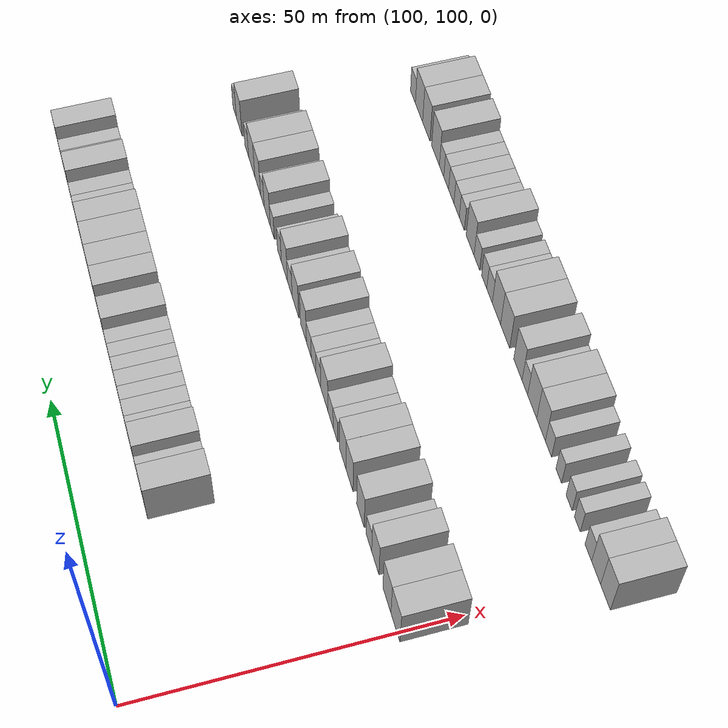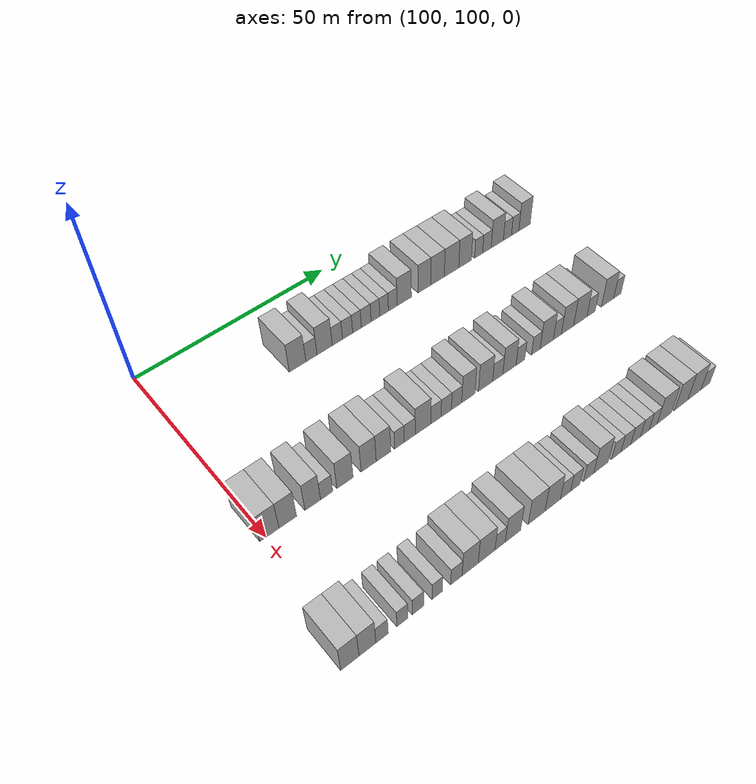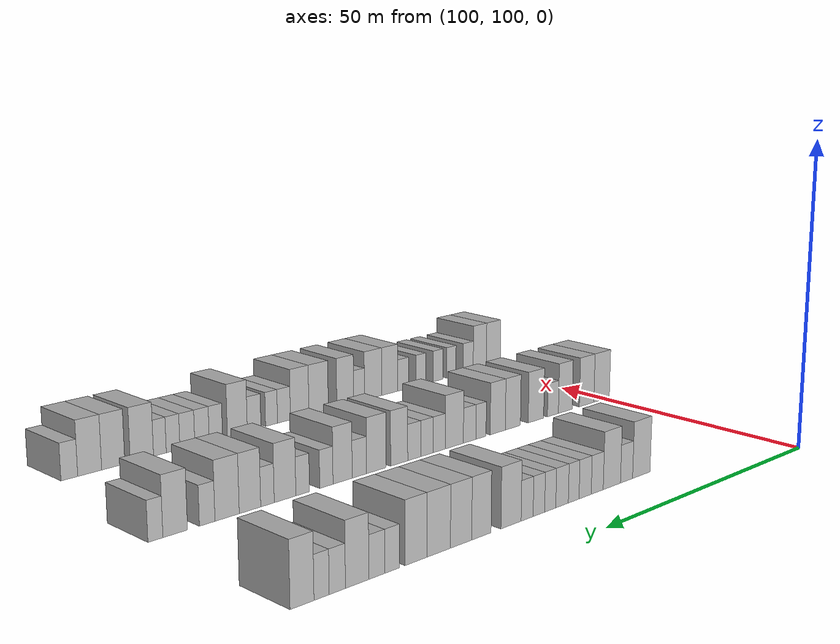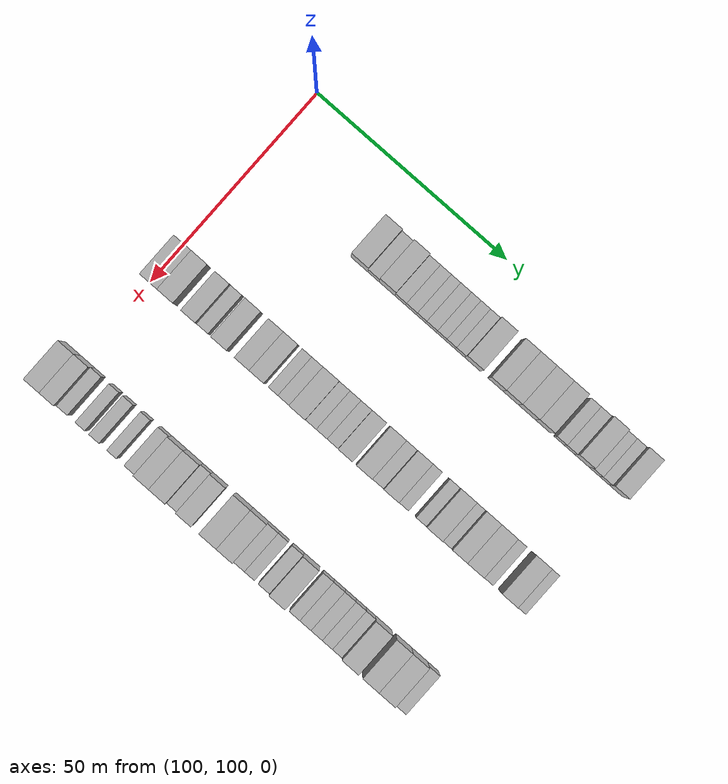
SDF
<sdf version="1.6">
 <world name="default">
  <model name="building_797">
   <static>1</static>
   <pose>115.0000 128.7473 0 0.000000 0.000000 0.000000</pose>
   <link name="link">
    <pose>0 0 4.50 0 0 0</pose>
    <collision name="collision"><geometry><box><size>10.0000 4.3881 9.0000</size></box></geometry></collision>
    <visual name="visual">
     <cast_shadows>0</cast_shadows>
     <geometry><box><size>10.0000 4.3881 9.0000</size></box></geometry>
     <material>
      <script>
       <uri>model://HANNAS_wall/materials/scripts</uri>
       <uri>model://HANNAS_wall/materials/textures</uri>
       <name>vrc/HANNAS_wall</name>
      </script>
     </material>
    </visual>
   </link>
  </model>
  <model name="building_798">
   <static>1</static>
   <pose>115.0000 132.4328 0 0.000000 0.000000 0.000000</pose>
   <link name="link">
    <pose>0 0 3.00 0 0 0</pose>
    <collision name="collision"><geometry><box><size>10.0000 2.9829 6.0000</size></box></geometry></collision>
    <visual name="visual">
     <cast_shadows>0</cast_shadows>
     <geometry><box><size>10.0000 2.9829 6.0000</size></box></geometry>
     <material>
      <script>
       <uri>model://HANNAS_wall/materials/scripts</uri>
       <uri>model://HANNAS_wall/materials/textures</uri>
       <name>vrc/HANNAS_wall</name>
      </script>
     </material>
    </visual>
   </link>
  </model>
  <model name="building_799">
   <static>1</static>
   <pose>115.0000 136.0014 0 0.000000 0.000000 0.000000</pose>
   <link name="link">
    <pose>0 0 4.50 0 0 0</pose>
    <collision name="collision"><geometry><box><size>10.0000 4.1544 9.0000</size></box></geometry></collision>
    <visual name="visual">
     <cast_shadows>0</cast_shadows>
     <geometry><box><size>10.0000 4.1544 9.0000</size></box></geometry>
     <material>
      <script>
       <uri>model://HANNAS_wall/materials/scripts</uri>
       <uri>model://HANNAS_wall/materials/textures</uri>
       <name>vrc/HANNAS_wall</name>
      </script>
     </material>
    </visual>
   </link>
  </model>
  <model name="building_800">
   <static>1</static>
   <pose>115.0000 139.4874 0 0.000000 0.000000 0.000000</pose>
   <link name="link">
    <pose>0 0 3.00 0 0 0</pose>
    <collision name="collision"><geometry><box><size>10.0000 2.8175 6.0000</size></box></geometry></collision>
    <visual name="visual">
     <cast_shadows>0</cast_shadows>
     <geometry><box><size>10.0000 2.8175 6.0000</size></box></geometry>
     <material>
      <script>
       <uri>model://HANNAS_wall/materials/scripts</uri>
       <uri>model://HANNAS_wall/materials/textures</uri>
       <name>vrc/HANNAS_wall</name>
      </script>
     </material>
    </visual>
   </link>
  </model>
  <model name="building_801">
   <static>1</static>
   <pose>115.0000 142.3061 0 0.000000 0.000000 0.000000</pose>
   <link name="link">
    <pose>0 0 3.00 0 0 0</pose>
    <collision name="collision"><geometry><box><size>10.0000 2.8199 6.0000</size></box></geometry></collision>
    <visual name="visual">
     <cast_shadows>0</cast_shadows>
     <geometry><box><size>10.0000 2.8199 6.0000</size></box></geometry>
     <material>
      <script>
       <uri>model://HANNAS_wall/materials/scripts</uri>
       <uri>model://HANNAS_wall/materials/textures</uri>
       <name>vrc/HANNAS_wall</name>
      </script>
     </material>
    </visual>
   </link>
  </model>
  <model name="building_802">
   <static>1</static>
   <pose>115.0000 144.9356 0 0.000000 0.000000 0.000000</pose>
   <link name="link">
    <pose>0 0 3.00 0 0 0</pose>
    <collision name="collision"><geometry><box><size>10.0000 2.4392 6.0000</size></box></geometry></collision>
    <visual name="visual">
     <cast_shadows>0</cast_shadows>
     <geometry><box><size>10.0000 2.4392 6.0000</size></box></geometry>
     <material>
      <script>
       <uri>model://HANNAS_wall/materials/scripts</uri>
       <uri>model://HANNAS_wall/materials/textures</uri>
       <name>vrc/HANNAS_wall</name>
      </script>
     </material>
    </visual>
   </link>
  </model>
  <model name="building_803">
   <static>1</static>
   <pose>115.0000 147.5526 0 0.000000 0.000000 0.000000</pose>
   <link name="link">
    <pose>0 0 3.00 0 0 0</pose>
    <collision name="collision"><geometry><box><size>10.0000 2.7948 6.0000</size></box></geometry></collision>
    <visual name="visual">
     <cast_shadows>0</cast_shadows>
     <geometry><box><size>10.0000 2.7948 6.0000</size></box></geometry>
     <material>
      <script>
       <uri>model://HANNAS_wall/materials/scripts</uri>
       <uri>model://HANNAS_wall/materials/textures</uri>
       <name>vrc/HANNAS_wall</name>
      </script>
     </material>
    </visual>
   </link>
  </model>
  <model name="building_804">
   <static>1</static>
   <pose>115.0000 150.1728 0 0.000000 0.000000 0.000000</pose>
   <link name="link">
    <pose>0 0 3.00 0 0 0</pose>
    <collision name="collision"><geometry><box><size>10.0000 2.4455 6.0000</size></box></geometry></collision>
    <visual name="visual">
     <cast_shadows>0</cast_shadows>
     <geometry><box><size>10.0000 2.4455 6.0000</size></box></geometry>
     <material>
      <script>
       <uri>model://HANNAS_wall/materials/scripts</uri>
       <uri>model://HANNAS_wall/materials/textures</uri>
       <name>vrc/HANNAS_wall</name>
      </script>
     </material>
    </visual>
   </link>
  </model>
  <model name="building_805">
   <static>1</static>
   <pose>115.0000 152.6391 0 0.000000 0.000000 0.000000</pose>
   <link name="link">
    <pose>0 0 3.00 0 0 0</pose>
    <collision name="collision"><geometry><box><size>10.0000 2.4870 6.0000</size></box></geometry></collision>
    <visual name="visual">
     <cast_shadows>0</cast_shadows>
     <geometry><box><size>10.0000 2.4870 6.0000</size></box></geometry>
     <material>
      <script>
       <uri>model://HANNAS_wall/materials/scripts</uri>
       <uri>model://HANNAS_wall/materials/textures</uri>
       <name>vrc/HANNAS_wall</name>
      </script>
     </material>
    </visual>
   </link>
  </model>
  <model name="building_806">
   <static>1</static>
   <pose>115.0000 155.1587 0 0.000000 0.000000 0.000000</pose>
   <link name="link">
    <pose>0 0 3.00 0 0 0</pose>
    <collision name="collision"><geometry><box><size>10.0000 2.5521 6.0000</size></box></geometry></collision>
    <visual name="visual">
     <cast_shadows>0</cast_shadows>
     <geometry><box><size>10.0000 2.5521 6.0000</size></box></geometry>
     <material>
      <script>
       <uri>model://HANNAS_wall/materials/scripts</uri>
       <uri>model://HANNAS_wall/materials/textures</uri>
       <name>vrc/HANNAS_wall</name>
      </script>
     </material>
    </visual>
   </link>
  </model>
  <model name="building_807">
   <static>1</static>
   <pose>115.0000 158.5305 0 0.000000 0.000000 0.000000</pose>
   <link name="link">
    <pose>0 0 4.50 0 0 0</pose>
    <collision name="collision"><geometry><box><size>10.0000 4.1913 9.0000</size></box></geometry></collision>
    <visual name="visual">
     <cast_shadows>0</cast_shadows>
     <geometry><box><size>10.0000 4.1913 9.0000</size></box></geometry>
     <material>
      <script>
       <uri>model://HANNAS_wall/materials/scripts</uri>
       <uri>model://HANNAS_wall/materials/textures</uri>
       <name>vrc/HANNAS_wall</name>
      </script>
     </material>
    </visual>
   </link>
  </model>
  <model name="building_808">
   <static>1</static>
   <pose>115.0000 164.5458 0 0.000000 0.000000 0.000000</pose>
   <link name="link">
    <pose>0 0 4.50 0 0 0</pose>
    <collision name="collision"><geometry><box><size>10.0000 3.8393 9.0000</size></box></geometry></collision>
    <visual name="visual">
     <cast_shadows>0</cast_shadows>
     <geometry><box><size>10.0000 3.8393 9.0000</size></box></geometry>
     <material>
      <script>
       <uri>model://HANNAS_wall/materials/scripts</uri>
       <uri>model://HANNAS_wall/materials/textures</uri>
       <name>vrc/HANNAS_wall</name>
      </script>
     </material>
    </visual>
   </link>
  </model>
  <model name="building_809">
   <static>1</static>
   <pose>115.0000 168.5230 0 0.000000 0.000000 0.000000</pose>
   <link name="link">
    <pose>0 0 4.50 0 0 0</pose>
    <collision name="collision"><geometry><box><size>10.0000 4.1152 9.0000</size></box></geometry></collision>
    <visual name="visual">
     <cast_shadows>0</cast_shadows>
     <geometry><box><size>10.0000 4.1152 9.0000</size></box></geometry>
     <material>
      <script>
       <uri>model://HANNAS_wall/materials/scripts</uri>
       <uri>model://HANNAS_wall/materials/textures</uri>
       <name>vrc/HANNAS_wall</name>
      </script>
     </material>
    </visual>
   </link>
  </model>
  <model name="building_810">
   <static>1</static>
   <pose>115.0000 172.8074 0 0.000000 0.000000 0.000000</pose>
   <link name="link">
    <pose>0 0 4.50 0 0 0</pose>
    <collision name="collision"><geometry><box><size>10.0000 4.4536 9.0000</size></box></geometry></collision>
    <visual name="visual">
     <cast_shadows>0</cast_shadows>
     <geometry><box><size>10.0000 4.4536 9.0000</size></box></geometry>
     <material>
      <script>
       <uri>model://HANNAS_wall/materials/scripts</uri>
       <uri>model://HANNAS_wall/materials/textures</uri>
       <name>vrc/HANNAS_wall</name>
      </script>
     </material>
    </visual>
   </link>
  </model>
  <model name="building_811">
   <static>1</static>
   <pose>115.0000 177.0146 0 0.000000 0.000000 0.000000</pose>
   <link name="link">
    <pose>0 0 4.50 0 0 0</pose>
    <collision name="collision"><geometry><box><size>10.0000 3.9610 9.0000</size></box></geometry></collision>
    <visual name="visual">
     <cast_shadows>0</cast_shadows>
     <geometry><box><size>10.0000 3.9610 9.0000</size></box></geometry>
     <material>
      <script>
       <uri>model://HANNAS_wall/materials/scripts</uri>
       <uri>model://HANNAS_wall/materials/textures</uri>
       <name>vrc/HANNAS_wall</name>
      </script>
     </material>
    </visual>
   </link>
  </model>
  <model name="building_812">
   <static>1</static>
   <pose>115.0000 181.2908 0 0.000000 0.000000 0.000000</pose>
   <link name="link">
    <pose>0 0 3.00 0 0 0</pose>
    <collision name="collision"><geometry><box><size>10.0000 2.5914 6.0000</size></box></geometry></collision>
    <visual name="visual">
     <cast_shadows>0</cast_shadows>
     <geometry><box><size>10.0000 2.5914 6.0000</size></box></geometry>
     <material>
      <script>
       <uri>model://HANNAS_wall/materials/scripts</uri>
       <uri>model://HANNAS_wall/materials/textures</uri>
       <name>vrc/HANNAS_wall</name>
      </script>
     </material>
    </visual>
   </link>
  </model>
  <model name="building_813">
   <static>1</static>
   <pose>115.0000 183.9563 0 0.000000 0.000000 0.000000</pose>
   <link name="link">
    <pose>0 0 3.00 0 0 0</pose>
    <collision name="collision"><geometry><box><size>10.0000 2.7395 6.0000</size></box></geometry></collision>
    <visual name="visual">
     <cast_shadows>0</cast_shadows>
     <geometry><box><size>10.0000 2.7395 6.0000</size></box></geometry>
     <material>
      <script>
       <uri>model://HANNAS_wall/materials/scripts</uri>
       <uri>model://HANNAS_wall/materials/textures</uri>
       <name>vrc/HANNAS_wall</name>
      </script>
     </material>
    </visual>
   </link>
  </model>
  <model name="building_814">
   <static>1</static>
   <pose>115.0000 187.3021 0 0.000000 0.000000 0.000000</pose>
   <link name="link">
    <pose>0 0 4.50 0 0 0</pose>
    <collision name="collision"><geometry><box><size>10.0000 3.9519 9.0000</size></box></geometry></collision>
    <visual name="visual">
     <cast_shadows>0</cast_shadows>
     <geometry><box><size>10.0000 3.9519 9.0000</size></box></geometry>
     <material>
      <script>
       <uri>model://HANNAS_wall/materials/scripts</uri>
       <uri>model://HANNAS_wall/materials/textures</uri>
       <name>vrc/HANNAS_wall</name>
      </script>
     </material>
    </visual>
   </link>
  </model>
  <model name="building_815">
   <static>1</static>
   <pose>115.0000 190.6146 0 0.000000 0.000000 0.000000</pose>
   <link name="link">
    <pose>0 0 3.00 0 0 0</pose>
    <collision name="collision"><geometry><box><size>10.0000 2.6731 6.0000</size></box></geometry></collision>
    <visual name="visual">
     <cast_shadows>0</cast_shadows>
     <geometry><box><size>10.0000 2.6731 6.0000</size></box></geometry>
     <material>
      <script>
       <uri>model://HANNAS_wall/materials/scripts</uri>
       <uri>model://HANNAS_wall/materials/textures</uri>
       <name>vrc/HANNAS_wall</name>
      </script>
     </material>
    </visual>
   </link>
  </model>
  <model name="building_816">
   <static>1</static>
   <pose>115.0000 193.1752 0 0.000000 0.000000 0.000000</pose>
   <link name="link">
    <pose>0 0 3.00 0 0 0</pose>
    <collision name="collision"><geometry><box><size>10.0000 2.4482 6.0000</size></box></geometry></collision>
    <visual name="visual">
     <cast_shadows>0</cast_shadows>
     <geometry><box><size>10.0000 2.4482 6.0000</size></box></geometry>
     <material>
      <script>
       <uri>model://HANNAS_wall/materials/scripts</uri>
       <uri>model://HANNAS_wall/materials/textures</uri>
       <name>vrc/HANNAS_wall</name>
      </script>
     </material>
    </visual>
   </link>
  </model>
  <model name="building_817">
   <static>1</static>
   <pose>115.0000 196.2857 0 0.000000 0.000000 0.000000</pose>
   <link name="link">
    <pose>0 0 4.50 0 0 0</pose>
    <collision name="collision"><geometry><box><size>10.0000 3.7728 9.0000</size></box></geometry></collision>
    <visual name="visual">
     <cast_shadows>0</cast_shadows>
     <geometry><box><size>10.0000 3.7728 9.0000</size></box></geometry>
     <material>
      <script>
       <uri>model://HANNAS_wall/materials/scripts</uri>
       <uri>model://HANNAS_wall/materials/textures</uri>
       <name>vrc/HANNAS_wall</name>
      </script>
     </material>
    </visual>
   </link>
  </model>
  <model name="building_1014">
   <static>1</static>
   <pose>145.0000 100.8133 0 0.000000 0.000000 0.000000</pose>
   <link name="link">
    <pose>0 0 4.50 0 0 0</pose>
    <collision name="collision"><geometry><box><size>10.0000 4.4678 9.0000</size></box></geometry></collision>
    <visual name="visual">
     <cast_shadows>0</cast_shadows>
     <geometry><box><size>10.0000 4.4678 9.0000</size></box></geometry>
     <material>
      <script>
       <uri>model://HANNAS_wall/materials/scripts</uri>
       <uri>model://HANNAS_wall/materials/textures</uri>
       <name>vrc/HANNAS_wall</name>
      </script>
     </material>
    </visual>
   </link>
  </model>
  <model name="building_1015">
   <static>1</static>
   <pose>145.0000 105.0974 0 0.000000 0.000000 0.000000</pose>
   <link name="link">
    <pose>0 0 4.50 0 0 0</pose>
    <collision name="collision"><geometry><box><size>10.0000 4.1003 9.0000</size></box></geometry></collision>
    <visual name="visual">
     <cast_shadows>0</cast_shadows>
     <geometry><box><size>10.0000 4.1003 9.0000</size></box></geometry>
     <material>
      <script>
       <uri>model://HANNAS_wall/materials/scripts</uri>
       <uri>model://HANNAS_wall/materials/textures</uri>
       <name>vrc/HANNAS_wall</name>
      </script>
     </material>
    </visual>
   </link>
  </model>
  <model name="building_1016">
   <static>1</static>
   <pose>145.0000 111.0250 0 0.000000 0.000000 0.000000</pose>
   <link name="link">
    <pose>0 0 4.50 0 0 0</pose>
    <collision name="collision"><geometry><box><size>10.0000 3.7549 9.0000</size></box></geometry></collision>
    <visual name="visual">
     <cast_shadows>0</cast_shadows>
     <geometry><box><size>10.0000 3.7549 9.0000</size></box></geometry>
     <material>
      <script>
       <uri>model://HANNAS_wall/materials/scripts</uri>
       <uri>model://HANNAS_wall/materials/textures</uri>
       <name>vrc/HANNAS_wall</name>
      </script>
     </material>
    </visual>
   </link>
  </model>
  <model name="building_1017">
   <static>1</static>
   <pose>145.0000 114.3806 0 0.000000 0.000000 0.000000</pose>
   <link name="link">
    <pose>0 0 3.00 0 0 0</pose>
    <collision name="collision"><geometry><box><size>10.0000 2.9562 6.0000</size></box></geometry></collision>
    <visual name="visual">
     <cast_shadows>0</cast_shadows>
     <geometry><box><size>10.0000 2.9562 6.0000</size></box></geometry>
     <material>
      <script>
       <uri>model://HANNAS_wall/materials/scripts</uri>
       <uri>model://HANNAS_wall/materials/textures</uri>
       <name>vrc/HANNAS_wall</name>
      </script>
     </material>
    </visual>
   </link>
  </model>
  <model name="building_1018">
   <static>1</static>
   <pose>145.0000 118.8811 0 0.000000 0.000000 0.000000</pose>
   <link name="link">
    <pose>0 0 4.50 0 0 0</pose>
    <collision name="collision"><geometry><box><size>10.0000 4.0448 9.0000</size></box></geometry></collision>
    <visual name="visual">
     <cast_shadows>0</cast_shadows>
     <geometry><box><size>10.0000 4.0448 9.0000</size></box></geometry>
     <material>
      <script>
       <uri>model://HANNAS_wall/materials/scripts</uri>
       <uri>model://HANNAS_wall/materials/textures</uri>
       <name>vrc/HANNAS_wall</name>
      </script>
     </material>
    </visual>
   </link>
  </model>
  <model name="building_1019">
   <static>1</static>
   <pose>145.0000 124.8182 0 0.000000 0.000000 0.000000</pose>
   <link name="link">
    <pose>0 0 4.50 0 0 0</pose>
    <collision name="collision"><geometry><box><size>10.0000 3.8295 9.0000</size></box></geometry></collision>
    <visual name="visual">
     <cast_shadows>0</cast_shadows>
     <geometry><box><size>10.0000 3.8295 9.0000</size></box></geometry>
     <material>
      <script>
       <uri>model://HANNAS_wall/materials/scripts</uri>
       <uri>model://HANNAS_wall/materials/textures</uri>
       <name>vrc/HANNAS_wall</name>
      </script>
     </material>
    </visual>
   </link>
  </model>
  <model name="building_1020">
   <static>1</static>
   <pose>145.0000 128.6165 0 0.000000 0.000000 0.000000</pose>
   <link name="link">
    <pose>0 0 4.50 0 0 0</pose>
    <collision name="collision"><geometry><box><size>10.0000 3.7670 9.0000</size></box></geometry></collision>
    <visual name="visual">
     <cast_shadows>0</cast_shadows>
     <geometry><box><size>10.0000 3.7670 9.0000</size></box></geometry>
     <material>
      <script>
       <uri>model://HANNAS_wall/materials/scripts</uri>
       <uri>model://HANNAS_wall/materials/textures</uri>
       <name>vrc/HANNAS_wall</name>
      </script>
     </material>
    </visual>
   </link>
  </model>
  <model name="building_1021">
   <static>1</static>
   <pose>145.0000 132.7388 0 0.000000 0.000000 0.000000</pose>
   <link name="link">
    <pose>0 0 3.00 0 0 0</pose>
    <collision name="collision"><geometry><box><size>10.0000 2.4777 6.0000</size></box></geometry></collision>
    <visual name="visual">
     <cast_shadows>0</cast_shadows>
     <geometry><box><size>10.0000 2.4777 6.0000</size></box></geometry>
     <material>
      <script>
       <uri>model://HANNAS_wall/materials/scripts</uri>
       <uri>model://HANNAS_wall/materials/textures</uri>
       <name>vrc/HANNAS_wall</name>
      </script>
     </material>
    </visual>
   </link>
  </model>
  <model name="building_1022">
   <static>1</static>
   <pose>145.0000 135.4642 0 0.000000 0.000000 0.000000</pose>
   <link name="link">
    <pose>0 0 3.00 0 0 0</pose>
    <collision name="collision"><geometry><box><size>10.0000 2.9730 6.0000</size></box></geometry></collision>
    <visual name="visual">
     <cast_shadows>0</cast_shadows>
     <geometry><box><size>10.0000 2.9730 6.0000</size></box></geometry>
     <material>
      <script>
       <uri>model://HANNAS_wall/materials/scripts</uri>
       <uri>model://HANNAS_wall/materials/textures</uri>
       <name>vrc/HANNAS_wall</name>
      </script>
     </material>
    </visual>
   </link>
  </model>
  <model name="building_1023">
   <static>1</static>
   <pose>145.0000 139.0472 0 0.000000 0.000000 0.000000</pose>
   <link name="link">
    <pose>0 0 4.50 0 0 0</pose>
    <collision name="collision"><geometry><box><size>10.0000 4.1930 9.0000</size></box></geometry></collision>
    <visual name="visual">
     <cast_shadows>0</cast_shadows>
     <geometry><box><size>10.0000 4.1930 9.0000</size></box></geometry>
     <material>
      <script>
       <uri>model://HANNAS_wall/materials/scripts</uri>
       <uri>model://HANNAS_wall/materials/textures</uri>
       <name>vrc/HANNAS_wall</name>
      </script>
     </material>
    </visual>
   </link>
  </model>
  <model name="building_1024">
   <static>1</static>
   <pose>145.0000 142.5374 0 0.000000 0.000000 0.000000</pose>
   <link name="link">
    <pose>0 0 3.00 0 0 0</pose>
    <collision name="collision"><geometry><box><size>10.0000 2.7876 6.0000</size></box></geometry></collision>
    <visual name="visual">
     <cast_shadows>0</cast_shadows>
     <geometry><box><size>10.0000 2.7876 6.0000</size></box></geometry>
     <material>
      <script>
       <uri>model://HANNAS_wall/materials/scripts</uri>
       <uri>model://HANNAS_wall/materials/textures</uri>
       <name>vrc/HANNAS_wall</name>
      </script>
     </material>
    </visual>
   </link>
  </model>
  <model name="building_1025">
   <static>1</static>
   <pose>145.0000 145.3483 0 0.000000 0.000000 0.000000</pose>
   <link name="link">
    <pose>0 0 3.00 0 0 0</pose>
    <collision name="collision"><geometry><box><size>10.0000 2.8342 6.0000</size></box></geometry></collision>
    <visual name="visual">
     <cast_shadows>0</cast_shadows>
     <geometry><box><size>10.0000 2.8342 6.0000</size></box></geometry>
     <material>
      <script>
       <uri>model://HANNAS_wall/materials/scripts</uri>
       <uri>model://HANNAS_wall/materials/textures</uri>
       <name>vrc/HANNAS_wall</name>
      </script>
     </material>
    </visual>
   </link>
  </model>
  <model name="building_1026">
   <static>1</static>
   <pose>145.0000 148.1973 0 0.000000 0.000000 0.000000</pose>
   <link name="link">
    <pose>0 0 3.00 0 0 0</pose>
    <collision name="collision"><geometry><box><size>10.0000 2.8637 6.0000</size></box></geometry></collision>
    <visual name="visual">
     <cast_shadows>0</cast_shadows>
     <geometry><box><size>10.0000 2.8637 6.0000</size></box></geometry>
     <material>
      <script>
       <uri>model://HANNAS_wall/materials/scripts</uri>
       <uri>model://HANNAS_wall/materials/textures</uri>
       <name>vrc/HANNAS_wall</name>
      </script>
     </material>
    </visual>
   </link>
  </model>
  <model name="building_1027">
   <static>1</static>
   <pose>145.0000 151.4830 0 0.000000 0.000000 0.000000</pose>
   <link name="link">
    <pose>0 0 4.50 0 0 0</pose>
    <collision name="collision"><geometry><box><size>10.0000 3.7078 9.0000</size></box></geometry></collision>
    <visual name="visual">
     <cast_shadows>0</cast_shadows>
     <geometry><box><size>10.0000 3.7078 9.0000</size></box></geometry>
     <material>
      <script>
       <uri>model://HANNAS_wall/materials/scripts</uri>
       <uri>model://HANNAS_wall/materials/textures</uri>
       <name>vrc/HANNAS_wall</name>
      </script>
     </material>
    </visual>
   </link>
  </model>
  <model name="building_1028">
   <static>1</static>
   <pose>145.0000 156.3765 0 0.000000 0.000000 0.000000</pose>
   <link name="link">
    <pose>0 0 4.50 0 0 0</pose>
    <collision name="collision"><geometry><box><size>10.0000 4.0793 9.0000</size></box></geometry></collision>
    <visual name="visual">
     <cast_shadows>0</cast_shadows>
     <geometry><box><size>10.0000 4.0793 9.0000</size></box></geometry>
     <material>
      <script>
       <uri>model://HANNAS_wall/materials/scripts</uri>
       <uri>model://HANNAS_wall/materials/textures</uri>
       <name>vrc/HANNAS_wall</name>
      </script>
     </material>
    </visual>
   </link>
  </model>
  <model name="building_1029">
   <static>1</static>
   <pose>145.0000 159.8992 0 0.000000 0.000000 0.000000</pose>
   <link name="link">
    <pose>0 0 3.00 0 0 0</pose>
    <collision name="collision"><geometry><box><size>10.0000 2.9660 6.0000</size></box></geometry></collision>
    <visual name="visual">
     <cast_shadows>0</cast_shadows>
     <geometry><box><size>10.0000 2.9660 6.0000</size></box></geometry>
     <material>
      <script>
       <uri>model://HANNAS_wall/materials/scripts</uri>
       <uri>model://HANNAS_wall/materials/textures</uri>
       <name>vrc/HANNAS_wall</name>
      </script>
     </material>
    </visual>
   </link>
  </model>
  <model name="building_1030">
   <static>1</static>
   <pose>145.0000 163.3170 0 0.000000 0.000000 0.000000</pose>
   <link name="link">
    <pose>0 0 4.50 0 0 0</pose>
    <collision name="collision"><geometry><box><size>10.0000 3.8696 9.0000</size></box></geometry></collision>
    <visual name="visual">
     <cast_shadows>0</cast_shadows>
     <geometry><box><size>10.0000 3.8696 9.0000</size></box></geometry>
     <material>
      <script>
       <uri>model://HANNAS_wall/materials/scripts</uri>
       <uri>model://HANNAS_wall/materials/textures</uri>
       <name>vrc/HANNAS_wall</name>
      </script>
     </material>
    </visual>
   </link>
  </model>
  <model name="building_1031">
   <static>1</static>
   <pose>145.0000 166.5636 0 0.000000 0.000000 0.000000</pose>
   <link name="link">
    <pose>0 0 3.00 0 0 0</pose>
    <collision name="collision"><geometry><box><size>10.0000 2.6235 6.0000</size></box></geometry></collision>
    <visual name="visual">
     <cast_shadows>0</cast_shadows>
     <geometry><box><size>10.0000 2.6235 6.0000</size></box></geometry>
     <material>
      <script>
       <uri>model://HANNAS_wall/materials/scripts</uri>
       <uri>model://HANNAS_wall/materials/textures</uri>
       <name>vrc/HANNAS_wall</name>
      </script>
     </material>
    </visual>
   </link>
  </model>
  <model name="building_1032">
   <static>1</static>
   <pose>145.0000 171.1815 0 0.000000 0.000000 0.000000</pose>
   <link name="link">
    <pose>0 0 3.00 0 0 0</pose>
    <collision name="collision"><geometry><box><size>10.0000 2.6123 6.0000</size></box></geometry></collision>
    <visual name="visual">
     <cast_shadows>0</cast_shadows>
     <geometry><box><size>10.0000 2.6123 6.0000</size></box></geometry>
     <material>
      <script>
       <uri>model://HANNAS_wall/materials/scripts</uri>
       <uri>model://HANNAS_wall/materials/textures</uri>
       <name>vrc/HANNAS_wall</name>
      </script>
     </material>
    </visual>
   </link>
  </model>
  <model name="building_1033">
   <static>1</static>
   <pose>145.0000 174.5165 0 0.000000 0.000000 0.000000</pose>
   <link name="link">
    <pose>0 0 4.50 0 0 0</pose>
    <collision name="collision"><geometry><box><size>10.0000 4.0577 9.0000</size></box></geometry></collision>
    <visual name="visual">
     <cast_shadows>0</cast_shadows>
     <geometry><box><size>10.0000 4.0577 9.0000</size></box></geometry>
     <material>
      <script>
       <uri>model://HANNAS_wall/materials/scripts</uri>
       <uri>model://HANNAS_wall/materials/textures</uri>
       <name>vrc/HANNAS_wall</name>
      </script>
     </material>
    </visual>
   </link>
  </model>
  <model name="building_1034">
   <static>1</static>
   <pose>145.0000 177.7896 0 0.000000 0.000000 0.000000</pose>
   <link name="link">
    <pose>0 0 3.00 0 0 0</pose>
    <collision name="collision"><geometry><box><size>10.0000 2.4884 6.0000</size></box></geometry></collision>
    <visual name="visual">
     <cast_shadows>0</cast_shadows>
     <geometry><box><size>10.0000 2.4884 6.0000</size></box></geometry>
     <material>
      <script>
       <uri>model://HANNAS_wall/materials/scripts</uri>
       <uri>model://HANNAS_wall/materials/textures</uri>
       <name>vrc/HANNAS_wall</name>
      </script>
     </material>
    </visual>
   </link>
  </model>
  <model name="building_1035">
   <static>1</static>
   <pose>145.0000 180.9646 0 0.000000 0.000000 0.000000</pose>
   <link name="link">
    <pose>0 0 4.50 0 0 0</pose>
    <collision name="collision"><geometry><box><size>10.0000 3.8615 9.0000</size></box></geometry></collision>
    <visual name="visual">
     <cast_shadows>0</cast_shadows>
     <geometry><box><size>10.0000 3.8615 9.0000</size></box></geometry>
     <material>
      <script>
       <uri>model://HANNAS_wall/materials/scripts</uri>
       <uri>model://HANNAS_wall/materials/textures</uri>
       <name>vrc/HANNAS_wall</name>
      </script>
     </material>
    </visual>
   </link>
  </model>
  <model name="building_1036">
   <static>1</static>
   <pose>145.0000 185.0206 0 0.000000 0.000000 0.000000</pose>
   <link name="link">
    <pose>0 0 4.50 0 0 0</pose>
    <collision name="collision"><geometry><box><size>10.0000 4.2505 9.0000</size></box></geometry></collision>
    <visual name="visual">
     <cast_shadows>0</cast_shadows>
     <geometry><box><size>10.0000 4.2505 9.0000</size></box></geometry>
     <material>
      <script>
       <uri>model://HANNAS_wall/materials/scripts</uri>
       <uri>model://HANNAS_wall/materials/textures</uri>
       <name>vrc/HANNAS_wall</name>
      </script>
     </material>
    </visual>
   </link>
  </model>
  <model name="building_1037">
   <static>1</static>
   <pose>145.0000 188.4783 0 0.000000 0.000000 0.000000</pose>
   <link name="link">
    <pose>0 0 3.00 0 0 0</pose>
    <collision name="collision"><geometry><box><size>10.0000 2.6651 6.0000</size></box></geometry></collision>
    <visual name="visual">
     <cast_shadows>0</cast_shadows>
     <geometry><box><size>10.0000 2.6651 6.0000</size></box></geometry>
     <material>
      <script>
       <uri>model://HANNAS_wall/materials/scripts</uri>
       <uri>model://HANNAS_wall/materials/textures</uri>
       <name>vrc/HANNAS_wall</name>
      </script>
     </material>
    </visual>
   </link>
  </model>
  <model name="building_1038">
   <static>1</static>
   <pose>145.0000 193.8384 0 0.000000 0.000000 0.000000</pose>
   <link name="link">
    <pose>0 0 4.50 0 0 0</pose>
    <collision name="collision"><geometry><box><size>10.0000 4.0552 9.0000</size></box></geometry></collision>
    <visual name="visual">
     <cast_shadows>0</cast_shadows>
     <geometry><box><size>10.0000 4.0552 9.0000</size></box></geometry>
     <material>
      <script>
       <uri>model://HANNAS_wall/materials/scripts</uri>
       <uri>model://HANNAS_wall/materials/textures</uri>
       <name>vrc/HANNAS_wall</name>
      </script>
     </material>
    </visual>
   </link>
  </model>
  <model name="building_1039">
   <static>1</static>
   <pose>145.0000 197.0781 0 0.000000 0.000000 0.000000</pose>
   <link name="link">
    <pose>0 0 3.00 0 0 0</pose>
    <collision name="collision"><geometry><box><size>10.0000 2.4242 6.0000</size></box></geometry></collision>
    <visual name="visual">
     <cast_shadows>0</cast_shadows>
     <geometry><box><size>10.0000 2.4242 6.0000</size></box></geometry>
     <material>
      <script>
       <uri>model://HANNAS_wall/materials/scripts</uri>
       <uri>model://HANNAS_wall/materials/textures</uri>
       <name>vrc/HANNAS_wall</name>
      </script>
     </material>
    </visual>
   </link>
  </model>
  <model name="building_1240">
   <static>1</static>
   <pose>175.0000 97.2610 0 0.000000 0.000000 0.000000</pose>
   <link name="link">
    <pose>0 0 4.50 0 0 0</pose>
    <collision name="collision"><geometry><box><size>10.0000 4.0344 9.0000</size></box></geometry></collision>
    <visual name="visual">
     <cast_shadows>0</cast_shadows>
     <geometry><box><size>10.0000 4.0344 9.0000</size></box></geometry>
     <material>
      <script>
       <uri>model://HANNAS_wall/materials/scripts</uri>
       <uri>model://HANNAS_wall/materials/textures</uri>
       <name>vrc/HANNAS_wall</name>
      </script>
     </material>
    </visual>
   </link>
  </model>
  <model name="building_1241">
   <static>1</static>
   <pose>175.0000 101.1628 0 0.000000 0.000000 0.000000</pose>
   <link name="link">
    <pose>0 0 4.50 0 0 0</pose>
    <collision name="collision"><geometry><box><size>10.0000 3.7691 9.0000</size></box></geometry></collision>
    <visual name="visual">
     <cast_shadows>0</cast_shadows>
     <geometry><box><size>10.0000 3.7691 9.0000</size></box></geometry>
     <material>
      <script>
       <uri>model://HANNAS_wall/materials/scripts</uri>
       <uri>model://HANNAS_wall/materials/textures</uri>
       <name>vrc/HANNAS_wall</name>
      </script>
     </material>
    </visual>
   </link>
  </model>
  <model name="building_1242">
   <static>1</static>
   <pose>175.0000 104.4459 0 0.000000 0.000000 0.000000</pose>
   <link name="link">
    <pose>0 0 3.00 0 0 0</pose>
    <collision name="collision"><geometry><box><size>10.0000 2.7970 6.0000</size></box></geometry></collision>
    <visual name="visual">
     <cast_shadows>0</cast_shadows>
     <geometry><box><size>10.0000 2.7970 6.0000</size></box></geometry>
     <material>
      <script>
       <uri>model://HANNAS_wall/materials/scripts</uri>
       <uri>model://HANNAS_wall/materials/textures</uri>
       <name>vrc/HANNAS_wall</name>
      </script>
     </material>
    </visual>
   </link>
  </model>
  <model name="building_1243">
   <static>1</static>
   <pose>175.0000 109.1198 0 0.000000 0.000000 0.000000</pose>
   <link name="link">
    <pose>0 0 3.00 0 0 0</pose>
    <collision name="collision"><geometry><box><size>10.0000 2.5507 6.0000</size></box></geometry></collision>
    <visual name="visual">
     <cast_shadows>0</cast_shadows>
     <geometry><box><size>10.0000 2.5507 6.0000</size></box></geometry>
     <material>
      <script>
       <uri>model://HANNAS_wall/materials/scripts</uri>
       <uri>model://HANNAS_wall/materials/textures</uri>
       <name>vrc/HANNAS_wall</name>
      </script>
     </material>
    </visual>
   </link>
  </model>
  <model name="building_1244">
   <static>1</static>
   <pose>175.0000 112.7277 0 0.000000 0.000000 0.000000</pose>
   <link name="link">
    <pose>0 0 3.00 0 0 0</pose>
    <collision name="collision"><geometry><box><size>10.0000 2.6651 6.0000</size></box></geometry></collision>
    <visual name="visual">
     <cast_shadows>0</cast_shadows>
     <geometry><box><size>10.0000 2.6651 6.0000</size></box></geometry>
     <material>
      <script>
       <uri>model://HANNAS_wall/materials/scripts</uri>
       <uri>model://HANNAS_wall/materials/textures</uri>
       <name>vrc/HANNAS_wall</name>
      </script>
     </material>
    </visual>
   </link>
  </model>
  <model name="building_1245">
   <static>1</static>
   <pose>175.0000 117.3073 0 0.000000 0.000000 0.000000</pose>
   <link name="link">
    <pose>0 0 3.00 0 0 0</pose>
    <collision name="collision"><geometry><box><size>10.0000 2.4942 6.0000</size></box></geometry></collision>
    <visual name="visual">
     <cast_shadows>0</cast_shadows>
     <geometry><box><size>10.0000 2.4942 6.0000</size></box></geometry>
     <material>
      <script>
       <uri>model://HANNAS_wall/materials/scripts</uri>
       <uri>model://HANNAS_wall/materials/textures</uri>
       <name>vrc/HANNAS_wall</name>
      </script>
     </material>
    </visual>
   </link>
  </model>
  <model name="building_1246">
   <static>1</static>
   <pose>175.0000 121.9627 0 0.000000 0.000000 0.000000</pose>
   <link name="link">
    <pose>0 0 3.00 0 0 0</pose>
    <collision name="collision"><geometry><box><size>10.0000 2.8164 6.0000</size></box></geometry></collision>
    <visual name="visual">
     <cast_shadows>0</cast_shadows>
     <geometry><box><size>10.0000 2.8164 6.0000</size></box></geometry>
     <material>
      <script>
       <uri>model://HANNAS_wall/materials/scripts</uri>
       <uri>model://HANNAS_wall/materials/textures</uri>
       <name>vrc/HANNAS_wall</name>
      </script>
     </material>
    </visual>
   </link>
  </model>
  <model name="building_1247">
   <static>1</static>
   <pose>175.0000 125.3740 0 0.000000 0.000000 0.000000</pose>
   <link name="link">
    <pose>0 0 4.50 0 0 0</pose>
    <collision name="collision"><geometry><box><size>10.0000 4.0062 9.0000</size></box></geometry></collision>
    <visual name="visual">
     <cast_shadows>0</cast_shadows>
     <geometry><box><size>10.0000 4.0062 9.0000</size></box></geometry>
     <material>
      <script>
       <uri>model://HANNAS_wall/materials/scripts</uri>
       <uri>model://HANNAS_wall/materials/textures</uri>
       <name>vrc/HANNAS_wall</name>
      </script>
     </material>
    </visual>
   </link>
  </model>
  <model name="building_1248">
   <static>1</static>
   <pose>175.0000 129.5053 0 0.000000 0.000000 0.000000</pose>
   <link name="link">
    <pose>0 0 4.50 0 0 0</pose>
    <collision name="collision"><geometry><box><size>10.0000 4.2564 9.0000</size></box></geometry></collision>
    <visual name="visual">
     <cast_shadows>0</cast_shadows>
     <geometry><box><size>10.0000 4.2564 9.0000</size></box></geometry>
     <material>
      <script>
       <uri>model://HANNAS_wall/materials/scripts</uri>
       <uri>model://HANNAS_wall/materials/textures</uri>
       <name>vrc/HANNAS_wall</name>
      </script>
     </material>
    </visual>
   </link>
  </model>
  <model name="building_1249">
   <static>1</static>
   <pose>175.0000 132.9526 0 0.000000 0.000000 0.000000</pose>
   <link name="link">
    <pose>0 0 3.00 0 0 0</pose>
    <collision name="collision"><geometry><box><size>10.0000 2.6382 6.0000</size></box></geometry></collision>
    <visual name="visual">
     <cast_shadows>0</cast_shadows>
     <geometry><box><size>10.0000 2.6382 6.0000</size></box></geometry>
     <material>
      <script>
       <uri>model://HANNAS_wall/materials/scripts</uri>
       <uri>model://HANNAS_wall/materials/textures</uri>
       <name>vrc/HANNAS_wall</name>
      </script>
     </material>
    </visual>
   </link>
  </model>
  <model name="building_1250">
   <static>1</static>
   <pose>175.0000 136.2769 0 0.000000 0.000000 0.000000</pose>
   <link name="link">
    <pose>0 0 4.50 0 0 0</pose>
    <collision name="collision"><geometry><box><size>10.0000 4.0106 9.0000</size></box></geometry></collision>
    <visual name="visual">
     <cast_shadows>0</cast_shadows>
     <geometry><box><size>10.0000 4.0106 9.0000</size></box></geometry>
     <material>
      <script>
       <uri>model://HANNAS_wall/materials/scripts</uri>
       <uri>model://HANNAS_wall/materials/textures</uri>
       <name>vrc/HANNAS_wall</name>
      </script>
     </material>
    </visual>
   </link>
  </model>
  <model name="building_1251">
   <static>1</static>
   <pose>175.0000 142.5209 0 0.000000 0.000000 0.000000</pose>
   <link name="link">
    <pose>0 0 4.50 0 0 0</pose>
    <collision name="collision"><geometry><box><size>10.0000 4.4774 9.0000</size></box></geometry></collision>
    <visual name="visual">
     <cast_shadows>0</cast_shadows>
     <geometry><box><size>10.0000 4.4774 9.0000</size></box></geometry>
     <material>
      <script>
       <uri>model://HANNAS_wall/materials/scripts</uri>
       <uri>model://HANNAS_wall/materials/textures</uri>
       <name>vrc/HANNAS_wall</name>
      </script>
     </material>
    </visual>
   </link>
  </model>
  <model name="building_1252">
   <static>1</static>
   <pose>175.0000 146.8438 0 0.000000 0.000000 0.000000</pose>
   <link name="link">
    <pose>0 0 4.50 0 0 0</pose>
    <collision name="collision"><geometry><box><size>10.0000 4.1683 9.0000</size></box></geometry></collision>
    <visual name="visual">
     <cast_shadows>0</cast_shadows>
     <geometry><box><size>10.0000 4.1683 9.0000</size></box></geometry>
     <material>
      <script>
       <uri>model://HANNAS_wall/materials/scripts</uri>
       <uri>model://HANNAS_wall/materials/textures</uri>
       <name>vrc/HANNAS_wall</name>
      </script>
     </material>
    </visual>
   </link>
  </model>
  <model name="building_1253">
   <static>1</static>
   <pose>175.0000 150.3538 0 0.000000 0.000000 0.000000</pose>
   <link name="link">
    <pose>0 0 3.00 0 0 0</pose>
    <collision name="collision"><geometry><box><size>10.0000 2.8518 6.0000</size></box></geometry></collision>
    <visual name="visual">
     <cast_shadows>0</cast_shadows>
     <geometry><box><size>10.0000 2.8518 6.0000</size></box></geometry>
     <material>
      <script>
       <uri>model://HANNAS_wall/materials/scripts</uri>
       <uri>model://HANNAS_wall/materials/textures</uri>
       <name>vrc/HANNAS_wall</name>
      </script>
     </material>
    </visual>
   </link>
  </model>
  <model name="building_1254">
   <static>1</static>
   <pose>175.0000 153.0832 0 0.000000 0.000000 0.000000</pose>
   <link name="link">
    <pose>0 0 3.00 0 0 0</pose>
    <collision name="collision"><geometry><box><size>10.0000 2.6070 6.0000</size></box></geometry></collision>
    <visual name="visual">
     <cast_shadows>0</cast_shadows>
     <geometry><box><size>10.0000 2.6070 6.0000</size></box></geometry>
     <material>
      <script>
       <uri>model://HANNAS_wall/materials/scripts</uri>
       <uri>model://HANNAS_wall/materials/textures</uri>
       <name>vrc/HANNAS_wall</name>
      </script>
     </material>
    </visual>
   </link>
  </model>
  <model name="building_1255">
   <static>1</static>
   <pose>175.0000 156.8386 0 0.000000 0.000000 0.000000</pose>
   <link name="link">
    <pose>0 0 3.00 0 0 0</pose>
    <collision name="collision"><geometry><box><size>10.0000 2.9037 6.0000</size></box></geometry></collision>
    <visual name="visual">
     <cast_shadows>0</cast_shadows>
     <geometry><box><size>10.0000 2.9037 6.0000</size></box></geometry>
     <material>
      <script>
       <uri>model://HANNAS_wall/materials/scripts</uri>
       <uri>model://HANNAS_wall/materials/textures</uri>
       <name>vrc/HANNAS_wall</name>
      </script>
     </material>
    </visual>
   </link>
  </model>
  <model name="building_1256">
   <static>1</static>
   <pose>175.0000 160.3725 0 0.000000 0.000000 0.000000</pose>
   <link name="link">
    <pose>0 0 4.50 0 0 0</pose>
    <collision name="collision"><geometry><box><size>10.0000 4.1641 9.0000</size></box></geometry></collision>
    <visual name="visual">
     <cast_shadows>0</cast_shadows>
     <geometry><box><size>10.0000 4.1641 9.0000</size></box></geometry>
     <material>
      <script>
       <uri>model://HANNAS_wall/materials/scripts</uri>
       <uri>model://HANNAS_wall/materials/textures</uri>
       <name>vrc/HANNAS_wall</name>
      </script>
     </material>
    </visual>
   </link>
  </model>
  <model name="building_1257">
   <static>1</static>
   <pose>175.0000 164.8088 0 0.000000 0.000000 0.000000</pose>
   <link name="link">
    <pose>0 0 3.00 0 0 0</pose>
    <collision name="collision"><geometry><box><size>10.0000 2.7084 6.0000</size></box></geometry></collision>
    <visual name="visual">
     <cast_shadows>0</cast_shadows>
     <geometry><box><size>10.0000 2.7084 6.0000</size></box></geometry>
     <material>
      <script>
       <uri>model://HANNAS_wall/materials/scripts</uri>
       <uri>model://HANNAS_wall/materials/textures</uri>
       <name>vrc/HANNAS_wall</name>
      </script>
     </material>
    </visual>
   </link>
  </model>
  <model name="building_1258">
   <static>1</static>
   <pose>175.0000 167.6110 0 0.000000 0.000000 0.000000</pose>
   <link name="link">
    <pose>0 0 3.00 0 0 0</pose>
    <collision name="collision"><geometry><box><size>10.0000 2.8960 6.0000</size></box></geometry></collision>
    <visual name="visual">
     <cast_shadows>0</cast_shadows>
     <geometry><box><size>10.0000 2.8960 6.0000</size></box></geometry>
     <material>
      <script>
       <uri>model://HANNAS_wall/materials/scripts</uri>
       <uri>model://HANNAS_wall/materials/textures</uri>
       <name>vrc/HANNAS_wall</name>
      </script>
     </material>
    </visual>
   </link>
  </model>
  <model name="building_1259">
   <static>1</static>
   <pose>175.0000 170.5243 0 0.000000 0.000000 0.000000</pose>
   <link name="link">
    <pose>0 0 3.00 0 0 0</pose>
    <collision name="collision"><geometry><box><size>10.0000 2.9306 6.0000</size></box></geometry></collision>
    <visual name="visual">
     <cast_shadows>0</cast_shadows>
     <geometry><box><size>10.0000 2.9306 6.0000</size></box></geometry>
     <material>
      <script>
       <uri>model://HANNAS_wall/materials/scripts</uri>
       <uri>model://HANNAS_wall/materials/textures</uri>
       <name>vrc/HANNAS_wall</name>
      </script>
     </material>
    </visual>
   </link>
  </model>
  <model name="building_1260">
   <static>1</static>
   <pose>175.0000 173.3143 0 0.000000 0.000000 0.000000</pose>
   <link name="link">
    <pose>0 0 3.00 0 0 0</pose>
    <collision name="collision"><geometry><box><size>10.0000 2.6495 6.0000</size></box></geometry></collision>
    <visual name="visual">
     <cast_shadows>0</cast_shadows>
     <geometry><box><size>10.0000 2.6495 6.0000</size></box></geometry>
     <material>
      <script>
       <uri>model://HANNAS_wall/materials/scripts</uri>
       <uri>model://HANNAS_wall/materials/textures</uri>
       <name>vrc/HANNAS_wall</name>
      </script>
     </material>
    </visual>
   </link>
  </model>
  <model name="building_1261">
   <static>1</static>
   <pose>175.0000 175.8596 0 0.000000 0.000000 0.000000</pose>
   <link name="link">
    <pose>0 0 3.00 0 0 0</pose>
    <collision name="collision"><geometry><box><size>10.0000 2.4410 6.0000</size></box></geometry></collision>
    <visual name="visual">
     <cast_shadows>0</cast_shadows>
     <geometry><box><size>10.0000 2.4410 6.0000</size></box></geometry>
     <material>
      <script>
       <uri>model://HANNAS_wall/materials/scripts</uri>
       <uri>model://HANNAS_wall/materials/textures</uri>
       <name>vrc/HANNAS_wall</name>
      </script>
     </material>
    </visual>
   </link>
  </model>
  <model name="building_1262">
   <static>1</static>
   <pose>175.0000 179.2537 0 0.000000 0.000000 0.000000</pose>
   <link name="link">
    <pose>0 0 4.50 0 0 0</pose>
    <collision name="collision"><geometry><box><size>10.0000 4.3473 9.0000</size></box></geometry></collision>
    <visual name="visual">
     <cast_shadows>0</cast_shadows>
     <geometry><box><size>10.0000 4.3473 9.0000</size></box></geometry>
     <material>
      <script>
       <uri>model://HANNAS_wall/materials/scripts</uri>
       <uri>model://HANNAS_wall/materials/textures</uri>
       <name>vrc/HANNAS_wall</name>
      </script>
     </material>
    </visual>
   </link>
  </model>
  <model name="building_1263">
   <static>1</static>
   <pose>175.0000 184.5273 0 0.000000 0.000000 0.000000</pose>
   <link name="link">
    <pose>0 0 4.50 0 0 0</pose>
    <collision name="collision"><geometry><box><size>10.0000 4.1999 9.0000</size></box></geometry></collision>
    <visual name="visual">
     <cast_shadows>0</cast_shadows>
     <geometry><box><size>10.0000 4.1999 9.0000</size></box></geometry>
     <material>
      <script>
       <uri>model://HANNAS_wall/materials/scripts</uri>
       <uri>model://HANNAS_wall/materials/textures</uri>
       <name>vrc/HANNAS_wall</name>
      </script>
     </material>
    </visual>
   </link>
  </model>
  <model name="building_1264">
   <static>1</static>
   <pose>175.0000 188.7479 0 0.000000 0.000000 0.000000</pose>
   <link name="link">
    <pose>0 0 4.50 0 0 0</pose>
    <collision name="collision"><geometry><box><size>10.0000 4.2412 9.0000</size></box></geometry></collision>
    <visual name="visual">
     <cast_shadows>0</cast_shadows>
     <geometry><box><size>10.0000 4.2412 9.0000</size></box></geometry>
     <material>
      <script>
       <uri>model://HANNAS_wall/materials/scripts</uri>
       <uri>model://HANNAS_wall/materials/textures</uri>
       <name>vrc/HANNAS_wall</name>
      </script>
     </material>
    </visual>
   </link>
  </model>
  <model name="building_1265">
   <static>1</static>
   <pose>175.0000 192.3180 0 0.000000 0.000000 0.000000</pose>
   <link name="link">
    <pose>0 0 3.00 0 0 0</pose>
    <collision name="collision"><geometry><box><size>10.0000 2.8990 6.0000</size></box></geometry></collision>
    <visual name="visual">
     <cast_shadows>0</cast_shadows>
     <geometry><box><size>10.0000 2.8990 6.0000</size></box></geometry>
     <material>
      <script>
       <uri>model://HANNAS_wall/materials/scripts</uri>
       <uri>model://HANNAS_wall/materials/textures</uri>
       <name>vrc/HANNAS_wall</name>
      </script>
     </material>
    </visual>
   </link>
  </model>
 </world>
</sdf>
